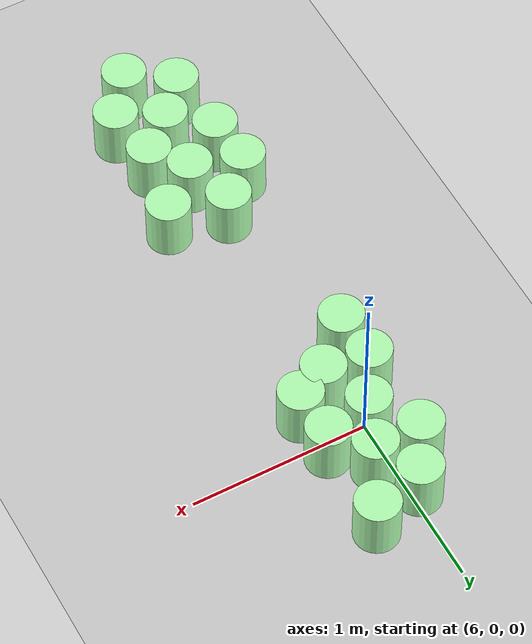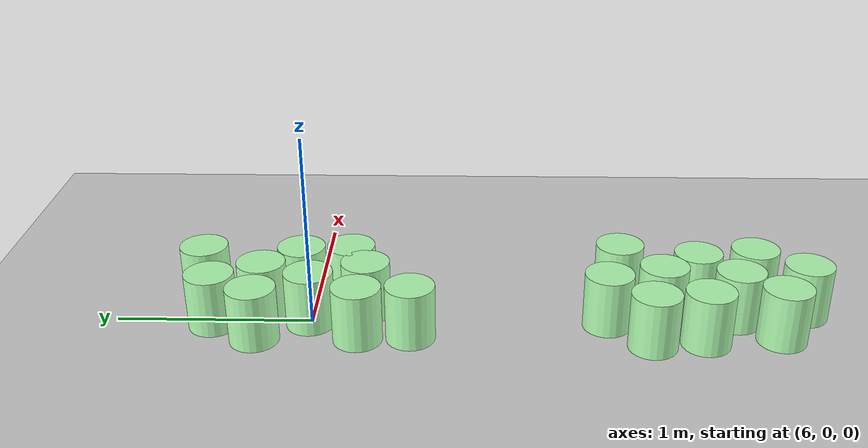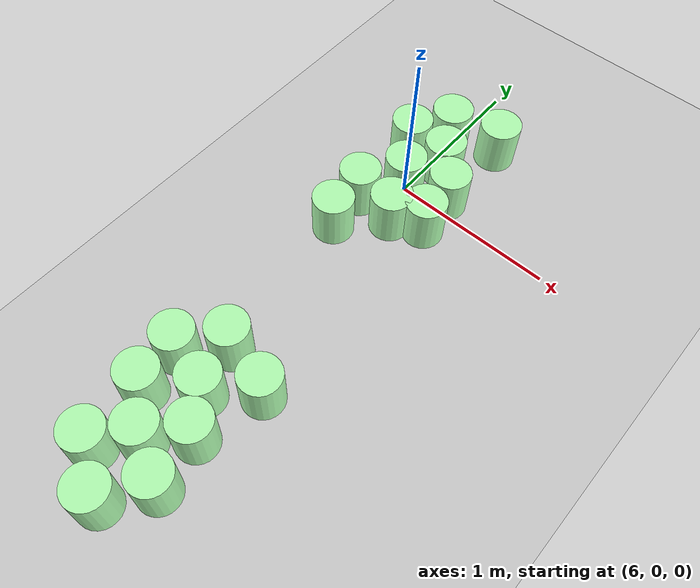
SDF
<sdf version="1.7">
 <world name="default">
  <model name="ground_plane">
   <static>1</static>
   <link name="link">
    <collision name="collision">
     <geometry><plane><normal>0 0 1</normal><size>100 100</size></plane></geometry>
     <surface><friction><ode><mu>100</mu><mu2>50</mu2></ode></friction></surface>
    </collision>
    <visual name="visual">
     <cast_shadows>0</cast_shadows>
     <geometry><plane><normal>0 0 1</normal><size>100 100</size></plane></geometry>
     <material>
      <script><uri>file://media/materials/scripts/gazebo.material</uri><name>Gazebo/Grey</name></script>
     </material>
    </visual>
   </link>
  </model>
  <model name="mhz_y_25_30_clone_22">
   <link name="link">
    <inertial>
     <mass>1</mass>
     <inertia><ixx>0.145833</ixx><ixy>0</ixy><ixz>0</ixz><iyy>0.145833</iyy><iyz>0</iyz><izz>0.125</izz></inertia>
    </inertial>
    <visual name="visual">
     <geometry><cylinder><radius>0.125</radius><length>0.3</length></cylinder></geometry>
     <material>
      <script><name>Gazebo/Grey</name><uri>file://media/materials/scripts/gazebo.material</uri></script>
      <shader type="pixel"><normal_map>__default__</normal_map></shader>
      <ambient>0 1 0 0</ambient>
      <diffuse>0.7 1 0.7 1</diffuse>
      <specular>0.01 0.01 0.01 1</specular>
      <emissive>0 0 0 1</emissive>
     </material>
    </visual>
    <collision name="collision">
     <geometry><cylinder><radius>0.125</radius><length>0.3</length></cylinder></geometry>
     <surface>
      <friction>
       <ode><mu>1</mu><mu2>1</mu2><fdir1>0 0 0</fdir1><slip1>0</slip1><slip2>0</slip2></ode>
       <torsional>
        <coefficient>1</coefficient>
        <patch_radius>0</patch_radius>
        <surface_radius>0</surface_radius>
        <use_patch_radius>1</use_patch_radius>
        <ode><slip>0</slip></ode>
       </torsional>
      </friction>
      <bounce><restitution_coefficient>0</restitution_coefficient><threshold>1e+06</threshold></bounce>
      <contact>
       <collide_without_contact>0</collide_without_contact>
       <collide_without_contact_bitmask>1</collide_without_contact_bitmask>
       <collide_bitmask>1</collide_bitmask>
       <ode>
        <soft_cfm>0</soft_cfm>
        <soft_erp>0.2</soft_erp>
        <kp>1e+13</kp>
        <kd>1</kd>
        <max_vel>0.01</max_vel>
        <min_depth>0</min_depth>
       </ode>
       <bullet>
        <split_impulse>1</split_impulse>
        <split_impulse_penetration_threshold>-0.01</split_impulse_penetration_threshold>
        <soft_cfm>0</soft_cfm>
        <soft_erp>0.2</soft_erp>
        <kp>1e+13</kp>
        <kd>1</kd>
       </bullet>
      </contact>
     </surface>
    </collision>
   </link>
   <static>1</static>
   <pose>5.82826 0.267586 0.14679 0 -0 0</pose>
  </model>
  <model name="mhz_y_25_30_clone_23">
   <link name="link">
    <inertial>
     <mass>1</mass>
     <inertia><ixx>0.145833</ixx><ixy>0</ixy><ixz>0</ixz><iyy>0.145833</iyy><iyz>0</iyz><izz>0.125</izz></inertia>
    </inertial>
    <visual name="visual">
     <geometry><cylinder><radius>0.125</radius><length>0.3</length></cylinder></geometry>
     <material>
      <script><name>Gazebo/Grey</name><uri>file://media/materials/scripts/gazebo.material</uri></script>
      <shader type="pixel"><normal_map>__default__</normal_map></shader>
      <ambient>0 1 0 0</ambient>
      <diffuse>0.7 1 0.7 1</diffuse>
      <specular>0.01 0.01 0.01 1</specular>
      <emissive>0 0 0 1</emissive>
     </material>
    </visual>
    <collision name="collision">
     <geometry><cylinder><radius>0.125</radius><length>0.3</length></cylinder></geometry>
     <surface>
      <friction>
       <ode><mu>1</mu><mu2>1</mu2><fdir1>0 0 0</fdir1><slip1>0</slip1><slip2>0</slip2></ode>
       <torsional>
        <coefficient>1</coefficient>
        <patch_radius>0</patch_radius>
        <surface_radius>0</surface_radius>
        <use_patch_radius>1</use_patch_radius>
        <ode><slip>0</slip></ode>
       </torsional>
      </friction>
      <bounce><restitution_coefficient>0</restitution_coefficient><threshold>1e+06</threshold></bounce>
      <contact>
       <collide_without_contact>0</collide_without_contact>
       <collide_without_contact_bitmask>1</collide_without_contact_bitmask>
       <collide_bitmask>1</collide_bitmask>
       <ode>
        <soft_cfm>0</soft_cfm>
        <soft_erp>0.2</soft_erp>
        <kp>1e+13</kp>
        <kd>1</kd>
        <max_vel>0.01</max_vel>
        <min_depth>0</min_depth>
       </ode>
       <bullet>
        <split_impulse>1</split_impulse>
        <split_impulse_penetration_threshold>-0.01</split_impulse_penetration_threshold>
        <soft_cfm>0</soft_cfm>
        <soft_erp>0.2</soft_erp>
        <kp>1e+13</kp>
        <kd>1</kd>
       </bullet>
      </contact>
     </surface>
    </collision>
   </link>
   <static>1</static>
   <pose>5.83982 -0.24616 0.14679 0 -0 0</pose>
  </model>
  <model name="mhz_y_25_30_clone_24">
   <link name="link">
    <inertial>
     <mass>1</mass>
     <inertia><ixx>0.145833</ixx><ixy>0</ixy><ixz>0</ixz><iyy>0.145833</iyy><iyz>0</iyz><izz>0.125</izz></inertia>
    </inertial>
    <visual name="visual">
     <geometry><cylinder><radius>0.125</radius><length>0.3</length></cylinder></geometry>
     <material>
      <script><name>Gazebo/Grey</name><uri>file://media/materials/scripts/gazebo.material</uri></script>
      <shader type="pixel"><normal_map>__default__</normal_map></shader>
      <ambient>0 1 0 0</ambient>
      <diffuse>0.7 1 0.7 1</diffuse>
      <specular>0.01 0.01 0.01 1</specular>
      <emissive>0 0 0 1</emissive>
     </material>
    </visual>
    <collision name="collision">
     <geometry><cylinder><radius>0.125</radius><length>0.3</length></cylinder></geometry>
     <surface>
      <friction>
       <ode><mu>1</mu><mu2>1</mu2><fdir1>0 0 0</fdir1><slip1>0</slip1><slip2>0</slip2></ode>
       <torsional>
        <coefficient>1</coefficient>
        <patch_radius>0</patch_radius>
        <surface_radius>0</surface_radius>
        <use_patch_radius>1</use_patch_radius>
        <ode><slip>0</slip></ode>
       </torsional>
      </friction>
      <bounce><restitution_coefficient>0</restitution_coefficient><threshold>1e+06</threshold></bounce>
      <contact>
       <collide_without_contact>0</collide_without_contact>
       <collide_without_contact_bitmask>1</collide_without_contact_bitmask>
       <collide_bitmask>1</collide_bitmask>
       <ode>
        <soft_cfm>0</soft_cfm>
        <soft_erp>0.2</soft_erp>
        <kp>1e+13</kp>
        <kd>1</kd>
        <max_vel>0.01</max_vel>
        <min_depth>0</min_depth>
       </ode>
       <bullet>
        <split_impulse>1</split_impulse>
        <split_impulse_penetration_threshold>-0.01</split_impulse_penetration_threshold>
        <soft_cfm>0</soft_cfm>
        <soft_erp>0.2</soft_erp>
        <kp>1e+13</kp>
        <kd>1</kd>
       </bullet>
      </contact>
     </surface>
    </collision>
   </link>
   <static>1</static>
   <pose>5.98475 0.006345 0.14679 0 -0 0</pose>
  </model>
  <model name="mhz_y_25_30_clone_25">
   <link name="link">
    <inertial>
     <mass>1</mass>
     <inertia><ixx>0.145833</ixx><ixy>0</ixy><ixz>0</ixz><iyy>0.145833</iyy><iyz>0</iyz><izz>0.125</izz></inertia>
    </inertial>
    <visual name="visual">
     <geometry><cylinder><radius>0.125</radius><length>0.3</length></cylinder></geometry>
     <material>
      <script><name>Gazebo/Grey</name><uri>file://media/materials/scripts/gazebo.material</uri></script>
      <shader type="pixel"><normal_map>__default__</normal_map></shader>
      <ambient>0 1 0 0</ambient>
      <diffuse>0.7 1 0.7 1</diffuse>
      <specular>0.01 0.01 0.01 1</specular>
      <emissive>0 0 0 1</emissive>
     </material>
    </visual>
    <collision name="collision">
     <geometry><cylinder><radius>0.125</radius><length>0.3</length></cylinder></geometry>
     <surface>
      <friction>
       <ode><mu>1</mu><mu2>1</mu2><fdir1>0 0 0</fdir1><slip1>0</slip1><slip2>0</slip2></ode>
       <torsional>
        <coefficient>1</coefficient>
        <patch_radius>0</patch_radius>
        <surface_radius>0</surface_radius>
        <use_patch_radius>1</use_patch_radius>
        <ode><slip>0</slip></ode>
       </torsional>
      </friction>
      <bounce><restitution_coefficient>0</restitution_coefficient><threshold>1e+06</threshold></bounce>
      <contact>
       <collide_without_contact>0</collide_without_contact>
       <collide_without_contact_bitmask>1</collide_without_contact_bitmask>
       <collide_bitmask>1</collide_bitmask>
       <ode>
        <soft_cfm>0</soft_cfm>
        <soft_erp>0.2</soft_erp>
        <kp>1e+13</kp>
        <kd>1</kd>
        <max_vel>0.01</max_vel>
        <min_depth>0</min_depth>
       </ode>
       <bullet>
        <split_impulse>1</split_impulse>
        <split_impulse_penetration_threshold>-0.01</split_impulse_penetration_threshold>
        <soft_cfm>0</soft_cfm>
        <soft_erp>0.2</soft_erp>
        <kp>1e+13</kp>
        <kd>1</kd>
       </bullet>
      </contact>
     </surface>
    </collision>
   </link>
   <static>1</static>
   <pose>6.09666 -0.27038 0.14679 0 -0 0</pose>
  </model>
  <model name="mhz_y_25_30_clone_26">
   <link name="link">
    <inertial>
     <mass>1</mass>
     <inertia><ixx>0.145833</ixx><ixy>0</ixy><ixz>0</ixz><iyy>0.145833</iyy><iyz>0</iyz><izz>0.125</izz></inertia>
    </inertial>
    <visual name="visual">
     <geometry><cylinder><radius>0.125</radius><length>0.3</length></cylinder></geometry>
     <material>
      <script><name>Gazebo/Grey</name><uri>file://media/materials/scripts/gazebo.material</uri></script>
      <shader type="pixel"><normal_map>__default__</normal_map></shader>
      <ambient>0 1 0 0</ambient>
      <diffuse>0.7 1 0.7 1</diffuse>
      <specular>0.01 0.01 0.01 1</specular>
      <emissive>0 0 0 1</emissive>
     </material>
    </visual>
    <collision name="collision">
     <geometry><cylinder><radius>0.125</radius><length>0.3</length></cylinder></geometry>
     <surface>
      <friction>
       <ode><mu>1</mu><mu2>1</mu2><fdir1>0 0 0</fdir1><slip1>0</slip1><slip2>0</slip2></ode>
       <torsional>
        <coefficient>1</coefficient>
        <patch_radius>0</patch_radius>
        <surface_radius>0</surface_radius>
        <use_patch_radius>1</use_patch_radius>
        <ode><slip>0</slip></ode>
       </torsional>
      </friction>
      <bounce><restitution_coefficient>0</restitution_coefficient><threshold>1e+06</threshold></bounce>
      <contact>
       <collide_without_contact>0</collide_without_contact>
       <collide_without_contact_bitmask>1</collide_without_contact_bitmask>
       <collide_bitmask>1</collide_bitmask>
       <ode>
        <soft_cfm>0</soft_cfm>
        <soft_erp>0.2</soft_erp>
        <kp>1e+13</kp>
        <kd>1</kd>
        <max_vel>0.01</max_vel>
        <min_depth>0</min_depth>
       </ode>
       <bullet>
        <split_impulse>1</split_impulse>
        <split_impulse_penetration_threshold>-0.01</split_impulse_penetration_threshold>
        <soft_cfm>0</soft_cfm>
        <soft_erp>0.2</soft_erp>
        <kp>1e+13</kp>
        <kd>1</kd>
       </bullet>
      </contact>
     </surface>
    </collision>
   </link>
   <static>1</static>
   <pose>6.08937 0.260429 0.14679 0 -0 0</pose>
  </model>
  <model name="mhz_y_25_30_clone_27">
   <link name="link">
    <inertial>
     <mass>1</mass>
     <inertia><ixx>0.145833</ixx><ixy>0</ixy><ixz>0</ixz><iyy>0.145833</iyy><iyz>0</iyz><izz>0.125</izz></inertia>
    </inertial>
    <visual name="visual">
     <geometry><cylinder><radius>0.125</radius><length>0.3</length></cylinder></geometry>
     <material>
      <script><name>Gazebo/Grey</name><uri>file://media/materials/scripts/gazebo.material</uri></script>
      <shader type="pixel"><normal_map>__default__</normal_map></shader>
      <ambient>0 1 0 0</ambient>
      <diffuse>0.7 1 0.7 1</diffuse>
      <specular>0.01 0.01 0.01 1</specular>
      <emissive>0 0 0 1</emissive>
     </material>
    </visual>
    <collision name="collision">
     <geometry><cylinder><radius>0.125</radius><length>0.3</length></cylinder></geometry>
     <surface>
      <friction>
       <ode><mu>1</mu><mu2>1</mu2><fdir1>0 0 0</fdir1><slip1>0</slip1><slip2>0</slip2></ode>
       <torsional>
        <coefficient>1</coefficient>
        <patch_radius>0</patch_radius>
        <surface_radius>0</surface_radius>
        <use_patch_radius>1</use_patch_radius>
        <ode><slip>0</slip></ode>
       </torsional>
      </friction>
      <bounce><restitution_coefficient>0</restitution_coefficient><threshold>1e+06</threshold></bounce>
      <contact>
       <collide_without_contact>0</collide_without_contact>
       <collide_without_contact_bitmask>1</collide_without_contact_bitmask>
       <collide_bitmask>1</collide_bitmask>
       <ode>
        <soft_cfm>0</soft_cfm>
        <soft_erp>0.2</soft_erp>
        <kp>1e+13</kp>
        <kd>1</kd>
        <max_vel>0.01</max_vel>
        <min_depth>0</min_depth>
       </ode>
       <bullet>
        <split_impulse>1</split_impulse>
        <split_impulse_penetration_threshold>-0.01</split_impulse_penetration_threshold>
        <soft_cfm>0</soft_cfm>
        <soft_erp>0.2</soft_erp>
        <kp>1e+13</kp>
        <kd>1</kd>
       </bullet>
      </contact>
     </surface>
    </collision>
   </link>
   <static>1</static>
   <pose>5.85807 -0.509195 0.14679 0 -0 0</pose>
  </model>
  <model name="mhz_y_25_30_clone_28">
   <link name="link">
    <inertial>
     <mass>1</mass>
     <inertia><ixx>0.145833</ixx><ixy>0</ixy><ixz>0</ixz><iyy>0.145833</iyy><iyz>0</iyz><izz>0.125</izz></inertia>
    </inertial>
    <visual name="visual">
     <geometry><cylinder><radius>0.125</radius><length>0.3</length></cylinder></geometry>
     <material>
      <script><name>Gazebo/Grey</name><uri>file://media/materials/scripts/gazebo.material</uri></script>
      <shader type="pixel"><normal_map>__default__</normal_map></shader>
      <ambient>0 1 0 0</ambient>
      <diffuse>0.7 1 0.7 1</diffuse>
      <specular>0.01 0.01 0.01 1</specular>
      <emissive>0 0 0 1</emissive>
     </material>
    </visual>
    <collision name="collision">
     <geometry><cylinder><radius>0.125</radius><length>0.3</length></cylinder></geometry>
     <surface>
      <friction>
       <ode><mu>1</mu><mu2>1</mu2><fdir1>0 0 0</fdir1><slip1>0</slip1><slip2>0</slip2></ode>
       <torsional>
        <coefficient>1</coefficient>
        <patch_radius>0</patch_radius>
        <surface_radius>0</surface_radius>
        <use_patch_radius>1</use_patch_radius>
        <ode><slip>0</slip></ode>
       </torsional>
      </friction>
      <bounce><restitution_coefficient>0</restitution_coefficient><threshold>1e+06</threshold></bounce>
      <contact>
       <collide_without_contact>0</collide_without_contact>
       <collide_without_contact_bitmask>1</collide_without_contact_bitmask>
       <collide_bitmask>1</collide_bitmask>
       <ode>
        <soft_cfm>0</soft_cfm>
        <soft_erp>0.2</soft_erp>
        <kp>1e+13</kp>
        <kd>1</kd>
        <max_vel>0.01</max_vel>
        <min_depth>0</min_depth>
       </ode>
       <bullet>
        <split_impulse>1</split_impulse>
        <split_impulse_penetration_threshold>-0.01</split_impulse_penetration_threshold>
        <soft_cfm>0</soft_cfm>
        <soft_erp>0.2</soft_erp>
        <kp>1e+13</kp>
        <kd>1</kd>
       </bullet>
      </contact>
     </surface>
    </collision>
   </link>
   <static>1</static>
   <pose>5.96466 0.500238 0.14679 0 -0 0</pose>
  </model>
  <model name="mhz_y_25_30_clone_29">
   <link name="link">
    <inertial>
     <mass>1</mass>
     <inertia><ixx>0.145833</ixx><ixy>0</ixy><ixz>0</ixz><iyy>0.145833</iyy><iyz>0</iyz><izz>0.125</izz></inertia>
    </inertial>
    <visual name="visual">
     <geometry><cylinder><radius>0.125</radius><length>0.3</length></cylinder></geometry>
     <material>
      <script><name>Gazebo/Grey</name><uri>file://media/materials/scripts/gazebo.material</uri></script>
      <shader type="pixel"><normal_map>__default__</normal_map></shader>
      <ambient>0 1 0 0</ambient>
      <diffuse>0.7 1 0.7 1</diffuse>
      <specular>0.01 0.01 0.01 1</specular>
      <emissive>0 0 0 1</emissive>
     </material>
    </visual>
    <collision name="collision">
     <geometry><cylinder><radius>0.125</radius><length>0.3</length></cylinder></geometry>
     <surface>
      <friction>
       <ode><mu>1</mu><mu2>1</mu2><fdir1>0 0 0</fdir1><slip1>0</slip1><slip2>0</slip2></ode>
       <torsional>
        <coefficient>1</coefficient>
        <patch_radius>0</patch_radius>
        <surface_radius>0</surface_radius>
        <use_patch_radius>1</use_patch_radius>
        <ode><slip>0</slip></ode>
       </torsional>
      </friction>
      <bounce><restitution_coefficient>0</restitution_coefficient><threshold>1e+06</threshold></bounce>
      <contact>
       <collide_without_contact>0</collide_without_contact>
       <collide_without_contact_bitmask>1</collide_without_contact_bitmask>
       <collide_bitmask>1</collide_bitmask>
       <ode>
        <soft_cfm>0</soft_cfm>
        <soft_erp>0.2</soft_erp>
        <kp>1e+13</kp>
        <kd>1</kd>
        <max_vel>0.01</max_vel>
        <min_depth>0</min_depth>
       </ode>
       <bullet>
        <split_impulse>1</split_impulse>
        <split_impulse_penetration_threshold>-0.01</split_impulse_penetration_threshold>
        <soft_cfm>0</soft_cfm>
        <soft_erp>0.2</soft_erp>
        <kp>1e+13</kp>
        <kd>1</kd>
       </bullet>
      </contact>
     </surface>
    </collision>
   </link>
   <static>1</static>
   <pose>6.26046 0.077056 0.14679 0 -0 0</pose>
  </model>
  <model name="mhz_y_25_30_clone_29_clone">
   <link name="link">
    <inertial>
     <mass>1</mass>
     <inertia><ixx>0.145833</ixx><ixy>0</ixy><ixz>0</ixz><iyy>0.145833</iyy><iyz>0</iyz><izz>0.125</izz></inertia>
    </inertial>
    <visual name="visual">
     <geometry><cylinder><radius>0.125</radius><length>0.3</length></cylinder></geometry>
     <material>
      <script><name>Gazebo/Grey</name><uri>file://media/materials/scripts/gazebo.material</uri></script>
      <shader type="pixel"><normal_map>__default__</normal_map></shader>
      <ambient>0 1 0 0</ambient>
      <diffuse>0.7 1 0.7 1</diffuse>
      <specular>0.01 0.01 0.01 1</specular>
      <emissive>0 0 0 1</emissive>
     </material>
    </visual>
    <collision name="collision">
     <geometry><cylinder><radius>0.125</radius><length>0.3</length></cylinder></geometry>
     <surface>
      <friction>
       <ode><mu>1</mu><mu2>1</mu2><fdir1>0 0 0</fdir1><slip1>0</slip1><slip2>0</slip2></ode>
       <torsional>
        <coefficient>1</coefficient>
        <patch_radius>0</patch_radius>
        <surface_radius>0</surface_radius>
        <use_patch_radius>1</use_patch_radius>
        <ode><slip>0</slip></ode>
       </torsional>
      </friction>
      <bounce><restitution_coefficient>0</restitution_coefficient><threshold>1e+06</threshold></bounce>
      <contact>
       <collide_without_contact>0</collide_without_contact>
       <collide_without_contact_bitmask>1</collide_without_contact_bitmask>
       <collide_bitmask>1</collide_bitmask>
       <ode>
        <soft_cfm>0</soft_cfm>
        <soft_erp>0.2</soft_erp>
        <kp>1e+13</kp>
        <kd>1</kd>
        <max_vel>0.01</max_vel>
        <min_depth>0</min_depth>
       </ode>
       <bullet>
        <split_impulse>1</split_impulse>
        <split_impulse_penetration_threshold>-0.01</split_impulse_penetration_threshold>
        <soft_cfm>0</soft_cfm>
        <soft_erp>0.2</soft_erp>
        <kp>1e+13</kp>
        <kd>1</kd>
       </bullet>
      </contact>
     </surface>
    </collision>
   </link>
   <static>1</static>
   <pose>6.27944 -0.181311 0.14679 0 -0 0</pose>
  </model>
  <model name="mhz_y_25_30_clone_29_clone_1">
   <link name="link">
    <inertial>
     <mass>1</mass>
     <inertia><ixx>0.145833</ixx><ixy>0</ixy><ixz>0</ixz><iyy>0.145833</iyy><iyz>0</iyz><izz>0.125</izz></inertia>
    </inertial>
    <visual name="visual">
     <geometry><cylinder><radius>0.125</radius><length>0.3</length></cylinder></geometry>
     <material>
      <script><name>Gazebo/Grey</name><uri>file://media/materials/scripts/gazebo.material</uri></script>
      <shader type="pixel"><normal_map>__default__</normal_map></shader>
      <ambient>0 1 0 0</ambient>
      <diffuse>0.7 1 0.7 1</diffuse>
      <specular>0.01 0.01 0.01 1</specular>
      <emissive>0 0 0 1</emissive>
     </material>
    </visual>
    <collision name="collision">
     <geometry><cylinder><radius>0.125</radius><length>0.3</length></cylinder></geometry>
     <surface>
      <friction>
       <ode><mu>1</mu><mu2>1</mu2><fdir1>0 0 0</fdir1><slip1>0</slip1><slip2>0</slip2></ode>
       <torsional>
        <coefficient>1</coefficient>
        <patch_radius>0</patch_radius>
        <surface_radius>0</surface_radius>
        <use_patch_radius>1</use_patch_radius>
        <ode><slip>0</slip></ode>
       </torsional>
      </friction>
      <bounce><restitution_coefficient>0</restitution_coefficient><threshold>1e+06</threshold></bounce>
      <contact>
       <collide_without_contact>0</collide_without_contact>
       <collide_without_contact_bitmask>1</collide_without_contact_bitmask>
       <collide_bitmask>1</collide_bitmask>
       <ode>
        <soft_cfm>0</soft_cfm>
        <soft_erp>0.2</soft_erp>
        <kp>1e+13</kp>
        <kd>1</kd>
        <max_vel>0.01</max_vel>
        <min_depth>0</min_depth>
       </ode>
       <bullet>
        <split_impulse>1</split_impulse>
        <split_impulse_penetration_threshold>-0.01</split_impulse_penetration_threshold>
        <soft_cfm>0</soft_cfm>
        <soft_erp>0.2</soft_erp>
        <kp>1e+13</kp>
        <kd>1</kd>
       </bullet>
      </contact>
     </surface>
    </collision>
   </link>
   <static>1</static>
   <pose>6.26213 0.588213 0.14679 0 -0 0</pose>
  </model>
  <model name="mhz_y_25_30_clone_29_clone_clone_clone_1_clone_2_clone_8_clone_clone_clone_0_clone_1_clone_clone_0">
   <link name="link">
    <inertial>
     <mass>1</mass>
     <inertia><ixx>0.145833</ixx><ixy>0</ixy><ixz>0</ixz><iyy>0.145833</iyy><iyz>0</iyz><izz>0.125</izz></inertia>
    </inertial>
    <visual name="visual">
     <geometry><cylinder><radius>0.125</radius><length>0.3</length></cylinder></geometry>
     <material>
      <script><name>Gazebo/Grey</name><uri>file://media/materials/scripts/gazebo.material</uri></script>
      <shader type="pixel"><normal_map>__default__</normal_map></shader>
      <ambient>0 1 0 0</ambient>
      <diffuse>0.7 1 0.7 1</diffuse>
      <specular>0.01 0.01 0.01 1</specular>
      <emissive>0 0 0 1</emissive>
     </material>
    </visual>
    <collision name="collision">
     <geometry><cylinder><radius>0.125</radius><length>0.3</length></cylinder></geometry>
     <surface>
      <friction>
       <ode><mu>1</mu><mu2>1</mu2><fdir1>0 0 0</fdir1><slip1>0</slip1><slip2>0</slip2></ode>
       <torsional>
        <coefficient>1</coefficient>
        <patch_radius>0</patch_radius>
        <surface_radius>0</surface_radius>
        <use_patch_radius>1</use_patch_radius>
        <ode><slip>0</slip></ode>
       </torsional>
      </friction>
      <bounce><restitution_coefficient>0</restitution_coefficient><threshold>1e+06</threshold></bounce>
      <contact>
       <collide_without_contact>0</collide_without_contact>
       <collide_without_contact_bitmask>1</collide_without_contact_bitmask>
       <collide_bitmask>1</collide_bitmask>
       <ode>
        <soft_cfm>0</soft_cfm>
        <soft_erp>0.2</soft_erp>
        <kp>1e+13</kp>
        <kd>1</kd>
        <max_vel>0.01</max_vel>
        <min_depth>0</min_depth>
       </ode>
       <bullet>
        <split_impulse>1</split_impulse>
        <split_impulse_penetration_threshold>-0.01</split_impulse_penetration_threshold>
        <soft_cfm>0</soft_cfm>
        <soft_erp>0.2</soft_erp>
        <kp>1e+13</kp>
        <kd>1</kd>
       </bullet>
      </contact>
     </surface>
    </collision>
   </link>
   <static>1</static>
   <pose>5.79911 -1.70719 0.14679 0 -0 0</pose>
  </model>
  <model name="mhz_y_25_30_clone_29_clone_clone_clone_1_clone_2_clone_8_clone_clone_clone_0_clone_1_clone_clone_0_clone">
   <link name="link">
    <inertial>
     <mass>1</mass>
     <inertia><ixx>0.145833</ixx><ixy>0</ixy><ixz>0</ixz><iyy>0.145833</iyy><iyz>0</iyz><izz>0.125</izz></inertia>
    </inertial>
    <visual name="visual">
     <geometry><cylinder><radius>0.125</radius><length>0.3</length></cylinder></geometry>
     <material>
      <script><name>Gazebo/Grey</name><uri>file://media/materials/scripts/gazebo.material</uri></script>
      <shader type="pixel"><normal_map>__default__</normal_map></shader>
      <ambient>0 1 0 0</ambient>
      <diffuse>0.7 1 0.7 1</diffuse>
      <specular>0.01 0.01 0.01 1</specular>
      <emissive>0 0 0 1</emissive>
     </material>
    </visual>
    <collision name="collision">
     <geometry><cylinder><radius>0.125</radius><length>0.3</length></cylinder></geometry>
     <surface>
      <friction>
       <ode><mu>1</mu><mu2>1</mu2><fdir1>0 0 0</fdir1><slip1>0</slip1><slip2>0</slip2></ode>
       <torsional>
        <coefficient>1</coefficient>
        <patch_radius>0</patch_radius>
        <surface_radius>0</surface_radius>
        <use_patch_radius>1</use_patch_radius>
        <ode><slip>0</slip></ode>
       </torsional>
      </friction>
      <bounce><restitution_coefficient>0</restitution_coefficient><threshold>1e+06</threshold></bounce>
      <contact>
       <collide_without_contact>0</collide_without_contact>
       <collide_without_contact_bitmask>1</collide_without_contact_bitmask>
       <collide_bitmask>1</collide_bitmask>
       <ode>
        <soft_cfm>0</soft_cfm>
        <soft_erp>0.2</soft_erp>
        <kp>1e+13</kp>
        <kd>1</kd>
        <max_vel>0.01</max_vel>
        <min_depth>0</min_depth>
       </ode>
       <bullet>
        <split_impulse>1</split_impulse>
        <split_impulse_penetration_threshold>-0.01</split_impulse_penetration_threshold>
        <soft_cfm>0</soft_cfm>
        <soft_erp>0.2</soft_erp>
        <kp>1e+13</kp>
        <kd>1</kd>
       </bullet>
      </contact>
     </surface>
    </collision>
   </link>
   <static>1</static>
   <pose>5.82801 -1.97358 0.14679 0 -0 0</pose>
  </model>
  <model name="mhz_y_25_30_clone_29_clone_clone_clone_1_clone_2_clone_8_clone_clone_clone_0_clone_1_clone_clone_0_clone_0">
   <link name="link">
    <inertial>
     <mass>1</mass>
     <inertia><ixx>0.145833</ixx><ixy>0</ixy><ixz>0</ixz><iyy>0.145833</iyy><iyz>0</iyz><izz>0.125</izz></inertia>
    </inertial>
    <visual name="visual">
     <geometry><cylinder><radius>0.125</radius><length>0.3</length></cylinder></geometry>
     <material>
      <script><name>Gazebo/Grey</name><uri>file://media/materials/scripts/gazebo.material</uri></script>
      <shader type="pixel"><normal_map>__default__</normal_map></shader>
      <ambient>0 1 0 0</ambient>
      <diffuse>0.7 1 0.7 1</diffuse>
      <specular>0.01 0.01 0.01 1</specular>
      <emissive>0 0 0 1</emissive>
     </material>
    </visual>
    <collision name="collision">
     <geometry><cylinder><radius>0.125</radius><length>0.3</length></cylinder></geometry>
     <surface>
      <friction>
       <ode><mu>1</mu><mu2>1</mu2><fdir1>0 0 0</fdir1><slip1>0</slip1><slip2>0</slip2></ode>
       <torsional>
        <coefficient>1</coefficient>
        <patch_radius>0</patch_radius>
        <surface_radius>0</surface_radius>
        <use_patch_radius>1</use_patch_radius>
        <ode><slip>0</slip></ode>
       </torsional>
      </friction>
      <bounce><restitution_coefficient>0</restitution_coefficient><threshold>1e+06</threshold></bounce>
      <contact>
       <collide_without_contact>0</collide_without_contact>
       <collide_without_contact_bitmask>1</collide_without_contact_bitmask>
       <collide_bitmask>1</collide_bitmask>
       <ode>
        <soft_cfm>0</soft_cfm>
        <soft_erp>0.2</soft_erp>
        <kp>1e+13</kp>
        <kd>1</kd>
        <max_vel>0.01</max_vel>
        <min_depth>0</min_depth>
       </ode>
       <bullet>
        <split_impulse>1</split_impulse>
        <split_impulse_penetration_threshold>-0.01</split_impulse_penetration_threshold>
        <soft_cfm>0</soft_cfm>
        <soft_erp>0.2</soft_erp>
        <kp>1e+13</kp>
        <kd>1</kd>
       </bullet>
      </contact>
     </surface>
    </collision>
   </link>
   <static>1</static>
   <pose>6.03424 -2.16382 0.14679 0 -0 0</pose>
  </model>
  <model name="mhz_y_25_30_clone_29_clone_clone_clone_1_clone_2_clone_8_clone_clone_clone_0_clone_1_clone_clone_0_clone_0_clone">
   <link name="link">
    <inertial>
     <mass>1</mass>
     <inertia><ixx>0.145833</ixx><ixy>0</ixy><ixz>0</ixz><iyy>0.145833</iyy><iyz>0</iyz><izz>0.125</izz></inertia>
    </inertial>
    <visual name="visual">
     <geometry><cylinder><radius>0.125</radius><length>0.3</length></cylinder></geometry>
     <material>
      <script><name>Gazebo/Grey</name><uri>file://media/materials/scripts/gazebo.material</uri></script>
      <shader type="pixel"><normal_map>__default__</normal_map></shader>
      <ambient>0 1 0 0</ambient>
      <diffuse>0.7 1 0.7 1</diffuse>
      <specular>0.01 0.01 0.01 1</specular>
      <emissive>0 0 0 1</emissive>
     </material>
    </visual>
    <collision name="collision">
     <geometry><cylinder><radius>0.125</radius><length>0.3</length></cylinder></geometry>
     <surface>
      <friction>
       <ode><mu>1</mu><mu2>1</mu2><fdir1>0 0 0</fdir1><slip1>0</slip1><slip2>0</slip2></ode>
       <torsional>
        <coefficient>1</coefficient>
        <patch_radius>0</patch_radius>
        <surface_radius>0</surface_radius>
        <use_patch_radius>1</use_patch_radius>
        <ode><slip>0</slip></ode>
       </torsional>
      </friction>
      <bounce><restitution_coefficient>0</restitution_coefficient><threshold>1e+06</threshold></bounce>
      <contact>
       <collide_without_contact>0</collide_without_contact>
       <collide_without_contact_bitmask>1</collide_without_contact_bitmask>
       <collide_bitmask>1</collide_bitmask>
       <ode>
        <soft_cfm>0</soft_cfm>
        <soft_erp>0.2</soft_erp>
        <kp>1e+13</kp>
        <kd>1</kd>
        <max_vel>0.01</max_vel>
        <min_depth>0</min_depth>
       </ode>
       <bullet>
        <split_impulse>1</split_impulse>
        <split_impulse_penetration_threshold>-0.01</split_impulse_penetration_threshold>
        <soft_cfm>0</soft_cfm>
        <soft_erp>0.2</soft_erp>
        <kp>1e+13</kp>
        <kd>1</kd>
       </bullet>
      </contact>
     </surface>
    </collision>
   </link>
   <static>1</static>
   <pose>6.07977 -1.78696 0.14679 0 -0 0</pose>
  </model>
  <model name="mhz_y_25_30_clone_29_clone_clone_clone_1_clone_2_clone_8_clone_clone_clone_0_clone_1_clone_clone_0_clone_0_clone_0">
   <link name="link">
    <inertial>
     <mass>1</mass>
     <inertia><ixx>0.145833</ixx><ixy>0</ixy><ixz>0</ixz><iyy>0.145833</iyy><iyz>0</iyz><izz>0.125</izz></inertia>
    </inertial>
    <visual name="visual">
     <geometry><cylinder><radius>0.125</radius><length>0.3</length></cylinder></geometry>
     <material>
      <script><name>Gazebo/Grey</name><uri>file://media/materials/scripts/gazebo.material</uri></script>
      <shader type="pixel"><normal_map>__default__</normal_map></shader>
      <ambient>0 1 0 0</ambient>
      <diffuse>0.7 1 0.7 1</diffuse>
      <specular>0.01 0.01 0.01 1</specular>
      <emissive>0 0 0 1</emissive>
     </material>
    </visual>
    <collision name="collision">
     <geometry><cylinder><radius>0.125</radius><length>0.3</length></cylinder></geometry>
     <surface>
      <friction>
       <ode><mu>1</mu><mu2>1</mu2><fdir1>0 0 0</fdir1><slip1>0</slip1><slip2>0</slip2></ode>
       <torsional>
        <coefficient>1</coefficient>
        <patch_radius>0</patch_radius>
        <surface_radius>0</surface_radius>
        <use_patch_radius>1</use_patch_radius>
        <ode><slip>0</slip></ode>
       </torsional>
      </friction>
      <bounce><restitution_coefficient>0</restitution_coefficient><threshold>1e+06</threshold></bounce>
      <contact>
       <collide_without_contact>0</collide_without_contact>
       <collide_without_contact_bitmask>1</collide_without_contact_bitmask>
       <collide_bitmask>1</collide_bitmask>
       <ode>
        <soft_cfm>0</soft_cfm>
        <soft_erp>0.2</soft_erp>
        <kp>1e+13</kp>
        <kd>1</kd>
        <max_vel>0.01</max_vel>
        <min_depth>0</min_depth>
       </ode>
       <bullet>
        <split_impulse>1</split_impulse>
        <split_impulse_penetration_threshold>-0.01</split_impulse_penetration_threshold>
        <soft_cfm>0</soft_cfm>
        <soft_erp>0.2</soft_erp>
        <kp>1e+13</kp>
        <kd>1</kd>
       </bullet>
      </contact>
     </surface>
    </collision>
   </link>
   <static>1</static>
   <pose>5.86731 -2.35624 0.14679 0 -0 0</pose>
  </model>
  <model name="mhz_y_25_30_clone_29_clone_clone_clone_1_clone_2_clone_8_clone_clone_clone_0_clone_1_clone_clone_0_clone_0_clone_clone">
   <link name="link">
    <inertial>
     <mass>1</mass>
     <inertia><ixx>0.145833</ixx><ixy>0</ixy><ixz>0</ixz><iyy>0.145833</iyy><iyz>0</iyz><izz>0.125</izz></inertia>
    </inertial>
    <visual name="visual">
     <geometry><cylinder><radius>0.125</radius><length>0.3</length></cylinder></geometry>
     <material>
      <script><name>Gazebo/Grey</name><uri>file://media/materials/scripts/gazebo.material</uri></script>
      <shader type="pixel"><normal_map>__default__</normal_map></shader>
      <ambient>0 1 0 0</ambient>
      <diffuse>0.7 1 0.7 1</diffuse>
      <specular>0.01 0.01 0.01 1</specular>
      <emissive>0 0 0 1</emissive>
     </material>
    </visual>
    <collision name="collision">
     <geometry><cylinder><radius>0.125</radius><length>0.3</length></cylinder></geometry>
     <surface>
      <friction>
       <ode><mu>1</mu><mu2>1</mu2><fdir1>0 0 0</fdir1><slip1>0</slip1><slip2>0</slip2></ode>
       <torsional>
        <coefficient>1</coefficient>
        <patch_radius>0</patch_radius>
        <surface_radius>0</surface_radius>
        <use_patch_radius>1</use_patch_radius>
        <ode><slip>0</slip></ode>
       </torsional>
      </friction>
      <bounce><restitution_coefficient>0</restitution_coefficient><threshold>1e+06</threshold></bounce>
      <contact>
       <collide_without_contact>0</collide_without_contact>
       <collide_without_contact_bitmask>1</collide_without_contact_bitmask>
       <collide_bitmask>1</collide_bitmask>
       <ode>
        <soft_cfm>0</soft_cfm>
        <soft_erp>0.2</soft_erp>
        <kp>1e+13</kp>
        <kd>1</kd>
        <max_vel>0.01</max_vel>
        <min_depth>0</min_depth>
       </ode>
       <bullet>
        <split_impulse>1</split_impulse>
        <split_impulse_penetration_threshold>-0.01</split_impulse_penetration_threshold>
        <soft_cfm>0</soft_cfm>
        <soft_erp>0.2</soft_erp>
        <kp>1e+13</kp>
        <kd>1</kd>
       </bullet>
      </contact>
     </surface>
    </collision>
   </link>
   <static>1</static>
   <pose>6.22704 -1.98312 0.14679 0 -0 0</pose>
  </model>
  <model name="mhz_y_25_30_clone_29_clone_clone_clone_1_clone_2_clone_8_clone_clone_clone_0_clone_1_clone_clone_0_clone_0_clone_clone_0">
   <link name="link">
    <inertial>
     <mass>1</mass>
     <inertia><ixx>0.145833</ixx><ixy>0</ixy><ixz>0</ixz><iyy>0.145833</iyy><iyz>0</iyz><izz>0.125</izz></inertia>
    </inertial>
    <visual name="visual">
     <geometry><cylinder><radius>0.125</radius><length>0.3</length></cylinder></geometry>
     <material>
      <script><name>Gazebo/Grey</name><uri>file://media/materials/scripts/gazebo.material</uri></script>
      <shader type="pixel"><normal_map>__default__</normal_map></shader>
      <ambient>0 1 0 0</ambient>
      <diffuse>0.7 1 0.7 1</diffuse>
      <specular>0.01 0.01 0.01 1</specular>
      <emissive>0 0 0 1</emissive>
     </material>
    </visual>
    <collision name="collision">
     <geometry><cylinder><radius>0.125</radius><length>0.3</length></cylinder></geometry>
     <surface>
      <friction>
       <ode><mu>1</mu><mu2>1</mu2><fdir1>0 0 0</fdir1><slip1>0</slip1><slip2>0</slip2></ode>
       <torsional>
        <coefficient>1</coefficient>
        <patch_radius>0</patch_radius>
        <surface_radius>0</surface_radius>
        <use_patch_radius>1</use_patch_radius>
        <ode><slip>0</slip></ode>
       </torsional>
      </friction>
      <bounce><restitution_coefficient>0</restitution_coefficient><threshold>1e+06</threshold></bounce>
      <contact>
       <collide_without_contact>0</collide_without_contact>
       <collide_without_contact_bitmask>1</collide_without_contact_bitmask>
       <collide_bitmask>1</collide_bitmask>
       <ode>
        <soft_cfm>0</soft_cfm>
        <soft_erp>0.2</soft_erp>
        <kp>1e+13</kp>
        <kd>1</kd>
        <max_vel>0.01</max_vel>
        <min_depth>0</min_depth>
       </ode>
       <bullet>
        <split_impulse>1</split_impulse>
        <split_impulse_penetration_threshold>-0.01</split_impulse_penetration_threshold>
        <soft_cfm>0</soft_cfm>
        <soft_erp>0.2</soft_erp>
        <kp>1e+13</kp>
        <kd>1</kd>
       </bullet>
      </contact>
     </surface>
    </collision>
   </link>
   <static>1</static>
   <pose>6.27579 -2.28713 0.14679 0 -0 0</pose>
  </model>
  <model name="mhz_y_25_30_clone_29_clone_clone_clone_1_clone_2_clone_8_clone_clone_clone_0_clone_1_clone_clone_0_clone_0_clone_clone_1">
   <link name="link">
    <inertial>
     <mass>1</mass>
     <inertia><ixx>0.145833</ixx><ixy>0</ixy><ixz>0</ixz><iyy>0.145833</iyy><iyz>0</iyz><izz>0.125</izz></inertia>
    </inertial>
    <visual name="visual">
     <geometry><cylinder><radius>0.125</radius><length>0.3</length></cylinder></geometry>
     <material>
      <script><name>Gazebo/Grey</name><uri>file://media/materials/scripts/gazebo.material</uri></script>
      <shader type="pixel"><normal_map>__default__</normal_map></shader>
      <ambient>0 1 0 0</ambient>
      <diffuse>0.7 1 0.7 1</diffuse>
      <specular>0.01 0.01 0.01 1</specular>
      <emissive>0 0 0 1</emissive>
     </material>
    </visual>
    <collision name="collision">
     <geometry><cylinder><radius>0.125</radius><length>0.3</length></cylinder></geometry>
     <surface>
      <friction>
       <ode><mu>1</mu><mu2>1</mu2><fdir1>0 0 0</fdir1><slip1>0</slip1><slip2>0</slip2></ode>
       <torsional>
        <coefficient>1</coefficient>
        <patch_radius>0</patch_radius>
        <surface_radius>0</surface_radius>
        <use_patch_radius>1</use_patch_radius>
        <ode><slip>0</slip></ode>
       </torsional>
      </friction>
      <bounce><restitution_coefficient>0</restitution_coefficient><threshold>1e+06</threshold></bounce>
      <contact>
       <collide_without_contact>0</collide_without_contact>
       <collide_without_contact_bitmask>1</collide_without_contact_bitmask>
       <collide_bitmask>1</collide_bitmask>
       <ode>
        <soft_cfm>0</soft_cfm>
        <soft_erp>0.2</soft_erp>
        <kp>1e+13</kp>
        <kd>1</kd>
        <max_vel>0.01</max_vel>
        <min_depth>0</min_depth>
       </ode>
       <bullet>
        <split_impulse>1</split_impulse>
        <split_impulse_penetration_threshold>-0.01</split_impulse_penetration_threshold>
        <soft_cfm>0</soft_cfm>
        <soft_erp>0.2</soft_erp>
        <kp>1e+13</kp>
        <kd>1</kd>
       </bullet>
      </contact>
     </surface>
    </collision>
   </link>
   <static>1</static>
   <pose>6.31397 -1.58773 0.14679 0 -0 0</pose>
  </model>
  <model name="mhz_y_25_30_clone_29_clone_clone_clone_1_clone_2_clone_8_clone_clone_clone_0_clone_1_clone_clone_clone">
   <link name="link">
    <inertial>
     <mass>1</mass>
     <inertia><ixx>0.145833</ixx><ixy>0</ixy><ixz>0</ixz><iyy>0.145833</iyy><iyz>0</iyz><izz>0.125</izz></inertia>
    </inertial>
    <visual name="visual">
     <geometry><cylinder><radius>0.125</radius><length>0.3</length></cylinder></geometry>
     <material>
      <script><name>Gazebo/Grey</name><uri>file://media/materials/scripts/gazebo.material</uri></script>
      <shader type="pixel"><normal_map>__default__</normal_map></shader>
      <ambient>0 1 0 0</ambient>
      <diffuse>0.7 1 0.7 1</diffuse>
      <specular>0.01 0.01 0.01 1</specular>
      <emissive>0 0 0 1</emissive>
     </material>
    </visual>
    <collision name="collision">
     <geometry><cylinder><radius>0.125</radius><length>0.3</length></cylinder></geometry>
     <surface>
      <friction>
       <ode><mu>1</mu><mu2>1</mu2><fdir1>0 0 0</fdir1><slip1>0</slip1><slip2>0</slip2></ode>
       <torsional>
        <coefficient>1</coefficient>
        <patch_radius>0</patch_radius>
        <surface_radius>0</surface_radius>
        <use_patch_radius>1</use_patch_radius>
        <ode><slip>0</slip></ode>
       </torsional>
      </friction>
      <bounce><restitution_coefficient>0</restitution_coefficient><threshold>1e+06</threshold></bounce>
      <contact>
       <collide_without_contact>0</collide_without_contact>
       <collide_without_contact_bitmask>1</collide_without_contact_bitmask>
       <collide_bitmask>1</collide_bitmask>
       <ode>
        <soft_cfm>0</soft_cfm>
        <soft_erp>0.2</soft_erp>
        <kp>1e+13</kp>
        <kd>1</kd>
        <max_vel>0.01</max_vel>
        <min_depth>0</min_depth>
       </ode>
       <bullet>
        <split_impulse>1</split_impulse>
        <split_impulse_penetration_threshold>-0.01</split_impulse_penetration_threshold>
        <soft_cfm>0</soft_cfm>
        <soft_erp>0.2</soft_erp>
        <kp>1e+13</kp>
        <kd>1</kd>
       </bullet>
      </contact>
     </surface>
    </collision>
   </link>
   <static>1</static>
   <pose>5.99518 -1.50148 0.14679 0 -0 0</pose>
  </model>
  <model name="mhz_y_25_30_clone_29_clone_clone_clone_1_clone_2_clone_8_clone_clone_clone_0_clone_1_clone_clone_clone_0">
   <link name="link">
    <inertial>
     <mass>1</mass>
     <inertia><ixx>0.145833</ixx><ixy>0</ixy><ixz>0</ixz><iyy>0.145833</iyy><iyz>0</iyz><izz>0.125</izz></inertia>
    </inertial>
    <visual name="visual">
     <geometry><cylinder><radius>0.125</radius><length>0.3</length></cylinder></geometry>
     <material>
      <script><name>Gazebo/Grey</name><uri>file://media/materials/scripts/gazebo.material</uri></script>
      <shader type="pixel"><normal_map>__default__</normal_map></shader>
      <ambient>0 1 0 0</ambient>
      <diffuse>0.7 1 0.7 1</diffuse>
      <specular>0.01 0.01 0.01 1</specular>
      <emissive>0 0 0 1</emissive>
     </material>
    </visual>
    <collision name="collision">
     <geometry><cylinder><radius>0.125</radius><length>0.3</length></cylinder></geometry>
     <surface>
      <friction>
       <ode><mu>1</mu><mu2>1</mu2><fdir1>0 0 0</fdir1><slip1>0</slip1><slip2>0</slip2></ode>
       <torsional>
        <coefficient>1</coefficient>
        <patch_radius>0</patch_radius>
        <surface_radius>0</surface_radius>
        <use_patch_radius>1</use_patch_radius>
        <ode><slip>0</slip></ode>
       </torsional>
      </friction>
      <bounce><restitution_coefficient>0</restitution_coefficient><threshold>1e+06</threshold></bounce>
      <contact>
       <collide_without_contact>0</collide_without_contact>
       <collide_without_contact_bitmask>1</collide_without_contact_bitmask>
       <collide_bitmask>1</collide_bitmask>
       <ode>
        <soft_cfm>0</soft_cfm>
        <soft_erp>0.2</soft_erp>
        <kp>1e+13</kp>
        <kd>1</kd>
        <max_vel>0.01</max_vel>
        <min_depth>0</min_depth>
       </ode>
       <bullet>
        <split_impulse>1</split_impulse>
        <split_impulse_penetration_threshold>-0.01</split_impulse_penetration_threshold>
        <soft_cfm>0</soft_cfm>
        <soft_erp>0.2</soft_erp>
        <kp>1e+13</kp>
        <kd>1</kd>
       </bullet>
      </contact>
     </surface>
    </collision>
   </link>
   <static>1</static>
   <pose>6.10567 -2.52316 0.14679 0 -0 0</pose>
  </model>
 </world>
</sdf>
